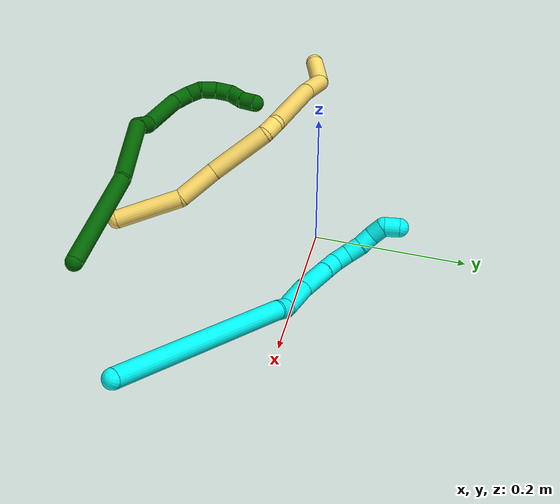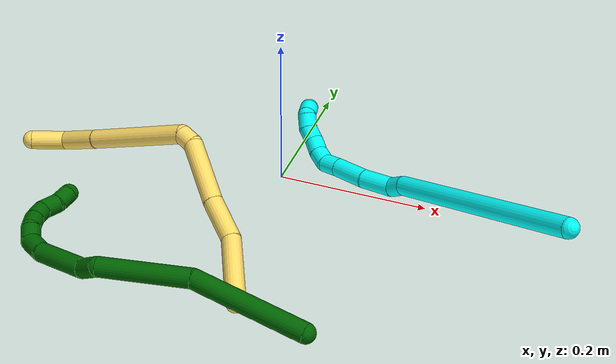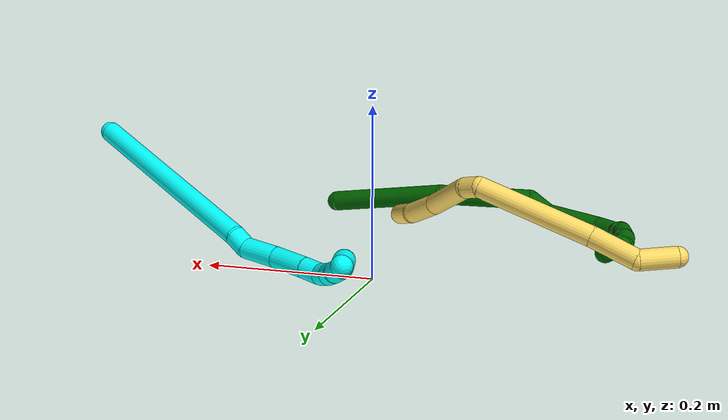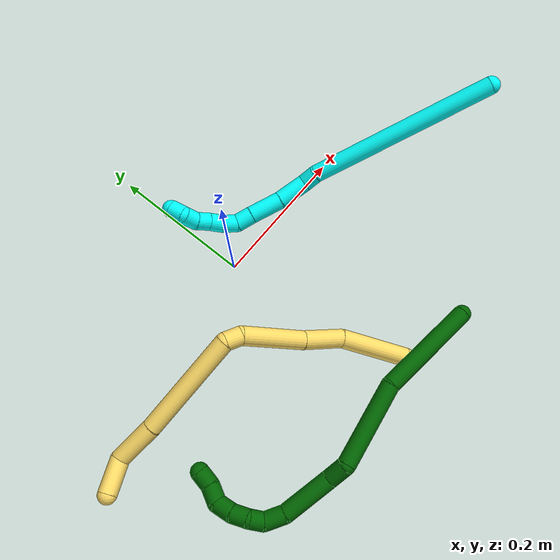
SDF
<sdf version="1.7">
 <world name="default">
  <model name="3">
   <static>0</static>
   <link name="3">
    <collision name="collision-cylinder-e_1_1_4">
     <pose>-0.052923 -0.005029 -0.121755 3.10031 -0.40972 -2.94355</pose>
     <geometry><cylinder><radius>0.0125</radius><length>0.265709</length></cylinder></geometry>
     <surface>
      <friction><ode><mu>1.16</mu><mu2>1.16</mu2><slip1>0</slip1><slip2>0</slip2></ode></friction>
      <contact><ode><kp>1e+06</kp><kd>1</kd><max_vel>0</max_vel><min_depth>0.001</min_depth></ode></contact>
     </surface>
    </collision>
    <visual name="visual-cylinder-e_1_1_4">
     <pose>-0.052923 -0.005029 -0.121755 3.10031 -0.40972 -2.94355</pose>
     <geometry><cylinder><radius>0.0125</radius><length>0.265709</length></cylinder></geometry>
     <material><ambient>0.003922 1 0.996078 1</ambient></material>
    </visual>
    <collision name="collision-cylinder-e_2_4_5">
     <pose>-0.108329 -0.012641 -0.253765 2.89482 -0.230607 -1.50244</pose>
     <geometry><cylinder><radius>0.0125</radius><length>0.021727</length></cylinder></geometry>
     <surface>
      <friction><ode><mu>1.16</mu><mu2>1.16</mu2><slip1>0</slip1><slip2>0</slip2></ode></friction>
      <contact><ode><kp>1e+06</kp><kd>1</kd><max_vel>0</max_vel><min_depth>0.001</min_depth></ode></contact>
     </surface>
    </collision>
    <visual name="visual-cylinder-e_2_4_5">
     <pose>-0.108329 -0.012641 -0.253765 2.89482 -0.230607 -1.50244</pose>
     <geometry><cylinder><radius>0.0125</radius><length>0.021727</length></cylinder></geometry>
     <material><ambient>0.003922 1 0.996078 1</ambient></material>
    </visual>
    <collision name="collision-cylinder-e_3_5_6">
     <pose>-0.124841 -0.018712 -0.280149 2.92861 -0.704593 -2.57565</pose>
     <geometry><cylinder><radius>0.0125</radius><length>0.043318</length></cylinder></geometry>
     <surface>
      <friction><ode><mu>1.16</mu><mu2>1.16</mu2><slip1>0</slip1><slip2>0</slip2></ode></friction>
      <contact><ode><kp>1e+06</kp><kd>1</kd><max_vel>0</max_vel><min_depth>0.001</min_depth></ode></contact>
     </surface>
    </collision>
    <visual name="visual-cylinder-e_3_5_6">
     <pose>-0.124841 -0.018712 -0.280149 2.92861 -0.704593 -2.57565</pose>
     <geometry><cylinder><radius>0.0125</radius><length>0.043318</length></cylinder></geometry>
     <material><ambient>0.003922 1 0.996078 1</ambient></material>
    </visual>
    <collision name="collision-cylinder-e_4_6_7">
     <pose>-0.152989 -0.022893 -0.314025 3.10257 -0.67164 -3.02991</pose>
     <geometry><cylinder><radius>0.0125</radius><length>0.045379</length></cylinder></geometry>
     <surface>
      <friction><ode><mu>1.16</mu><mu2>1.16</mu2><slip1>0</slip1><slip2>0</slip2></ode></friction>
      <contact><ode><kp>1e+06</kp><kd>1</kd><max_vel>0</max_vel><min_depth>0.001</min_depth></ode></contact>
     </surface>
    </collision>
    <visual name="visual-cylinder-e_4_6_7">
     <pose>-0.152989 -0.022893 -0.314025 3.10257 -0.67164 -3.02991</pose>
     <geometry><cylinder><radius>0.0125</radius><length>0.045379</length></cylinder></geometry>
     <material><ambient>0.003922 1 0.996078 1</ambient></material>
    </visual>
    <collision name="collision-cylinder-e_5_7_8">
     <pose>-0.174168 -0.024471 -0.34123 3.04828 -0.63921 -2.8613</pose>
     <geometry><cylinder><radius>0.0125</radius><length>0.023671</length></cylinder></geometry>
     <surface>
      <friction><ode><mu>1.16</mu><mu2>1.16</mu2><slip1>0</slip1><slip2>0</slip2></ode></friction>
      <contact><ode><kp>1e+06</kp><kd>1</kd><max_vel>0</max_vel><min_depth>0.001</min_depth></ode></contact>
     </surface>
    </collision>
    <visual name="visual-cylinder-e_5_7_8">
     <pose>-0.174168 -0.024471 -0.34123 3.04828 -0.63921 -2.8613</pose>
     <geometry><cylinder><radius>0.0125</radius><length>0.023671</length></cylinder></geometry>
     <material><ambient>0.003922 1 0.996078 1</ambient></material>
    </visual>
    <collision name="collision-cylinder-e_6_8_9">
     <pose>-0.187984 -0.021308 -0.35691 -2.56477 -0.738259 1.83314</pose>
     <geometry><cylinder><radius>0.0125</radius><length>0.020073</length></cylinder></geometry>
     <surface>
      <friction><ode><mu>1.16</mu><mu2>1.16</mu2><slip1>0</slip1><slip2>0</slip2></ode></friction>
      <contact><ode><kp>1e+06</kp><kd>1</kd><max_vel>0</max_vel><min_depth>0.001</min_depth></ode></contact>
     </surface>
    </collision>
    <visual name="visual-cylinder-e_6_8_9">
     <pose>-0.187984 -0.021308 -0.35691 -2.56477 -0.738259 1.83314</pose>
     <geometry><cylinder><radius>0.0125</radius><length>0.020073</length></cylinder></geometry>
     <material><ambient>0.003922 1 0.996078 1</ambient></material>
    </visual>
    <collision name="collision-cylinder-e_7_9_10">
     <pose>-0.201326 -0.011598 -0.368152 -2.29618 -0.716425 1.38819</pose>
     <geometry><cylinder><radius>0.0125</radius><length>0.020064</length></cylinder></geometry>
     <surface>
      <friction><ode><mu>1.16</mu><mu2>1.16</mu2><slip1>0</slip1><slip2>0</slip2></ode></friction>
      <contact><ode><kp>1e+06</kp><kd>1</kd><max_vel>0</max_vel><min_depth>0.001</min_depth></ode></contact>
     </surface>
    </collision>
    <visual name="visual-cylinder-e_7_9_10">
     <pose>-0.201326 -0.011598 -0.368152 -2.29618 -0.716425 1.38819</pose>
     <geometry><cylinder><radius>0.0125</radius><length>0.020064</length></cylinder></geometry>
     <material><ambient>0.003922 1 0.996078 1</ambient></material>
    </visual>
    <collision name="collision-cylinder-e_8_10_11">
     <pose>-0.215701 -0.001235 -0.377337 -2.29584 -0.891944 1.63126</pose>
     <geometry><cylinder><radius>0.0125</radius><length>0.020011</length></cylinder></geometry>
     <surface>
      <friction><ode><mu>1.16</mu><mu2>1.16</mu2><slip1>0</slip1><slip2>0</slip2></ode></friction>
      <contact><ode><kp>1e+06</kp><kd>1</kd><max_vel>0</max_vel><min_depth>0.001</min_depth></ode></contact>
     </surface>
    </collision>
    <visual name="visual-cylinder-e_8_10_11">
     <pose>-0.215701 -0.001235 -0.377337 -2.29584 -0.891944 1.63126</pose>
     <geometry><cylinder><radius>0.0125</radius><length>0.020011</length></cylinder></geometry>
     <material><ambient>0.003922 1 0.996078 1</ambient></material>
    </visual>
    <collision name="collision-cylinder-e_9_11_12">
     <pose>-0.230087 0.010786 -0.383252 -1.80536 -0.71989 0.889943</pose>
     <geometry><cylinder><radius>0.0125</radius><length>0.020016</length></cylinder></geometry>
     <surface>
      <friction><ode><mu>1.16</mu><mu2>1.16</mu2><slip1>0</slip1><slip2>0</slip2></ode></friction>
      <contact><ode><kp>1e+06</kp><kd>1</kd><max_vel>0</max_vel><min_depth>0.001</min_depth></ode></contact>
     </surface>
    </collision>
    <visual name="visual-cylinder-e_9_11_12">
     <pose>-0.230087 0.010786 -0.383252 -1.80536 -0.71989 0.889943</pose>
     <geometry><cylinder><radius>0.0125</radius><length>0.020016</length></cylinder></geometry>
     <material><ambient>0.003922 1 0.996078 1</ambient></material>
    </visual>
    <collision name="collision-cylinder-e_10_12_2">
     <pose>-0.237624 0.025431 -0.391767 -2.3165 -0.093848 0.213768</pose>
     <geometry><cylinder><radius>0.0125</radius><length>0.020033</length></cylinder></geometry>
     <surface>
      <friction><ode><mu>1.16</mu><mu2>1.16</mu2><slip1>0</slip1><slip2>0</slip2></ode></friction>
      <contact><ode><kp>1e+06</kp><kd>1</kd><max_vel>0</max_vel><min_depth>0.001</min_depth></ode></contact>
     </surface>
    </collision>
    <visual name="visual-cylinder-e_10_12_2">
     <pose>-0.237624 0.025431 -0.391767 -2.3165 -0.093848 0.213768</pose>
     <geometry><cylinder><radius>0.0125</radius><length>0.020033</length></cylinder></geometry>
     <material><ambient>0.003922 1 0.996078 1</ambient></material>
    </visual>
    <collision name="collision-sphere-2">
     <pose>-0.238562 0.032756 -0.398533 0 -0 0</pose>
     <geometry><sphere><radius>0.0125</radius></sphere></geometry>
     <surface>
      <friction><ode><mu>1.16</mu><mu2>1.16</mu2><slip1>0</slip1><slip2>0</slip2></ode></friction>
      <contact><ode><kp>1e+06</kp><kd>1</kd><max_vel>0</max_vel><min_depth>0.001</min_depth></ode></contact>
     </surface>
    </collision>
    <visual name="visual-sphere-2">
     <pose>-0.238562 0.032756 -0.398533 0 -0 0</pose>
     <geometry><sphere><radius>0.0125</radius></sphere></geometry>
     <material><ambient>0.003922 1 0.996078 1</ambient></material>
    </visual>
    <collision name="collision-sphere-12">
     <pose>-0.236685 0.018105 -0.385001 0 -0 0</pose>
     <geometry><sphere><radius>0.0125</radius></sphere></geometry>
     <surface>
      <friction><ode><mu>1.16</mu><mu2>1.16</mu2><slip1>0</slip1><slip2>0</slip2></ode></friction>
      <contact><ode><kp>1e+06</kp><kd>1</kd><max_vel>0</max_vel><min_depth>0.001</min_depth></ode></contact>
     </surface>
    </collision>
    <visual name="visual-sphere-12">
     <pose>-0.236685 0.018105 -0.385001 0 -0 0</pose>
     <geometry><sphere><radius>0.0125</radius></sphere></geometry>
     <material><ambient>0.003922 1 0.996078 1</ambient></material>
    </visual>
    <collision name="collision-sphere-11">
     <pose>-0.223488 0.003467 -0.381503 0 -0 0</pose>
     <geometry><sphere><radius>0.0125</radius></sphere></geometry>
     <surface>
      <friction><ode><mu>1.16</mu><mu2>1.16</mu2><slip1>0</slip1><slip2>0</slip2></ode></friction>
      <contact><ode><kp>1e+06</kp><kd>1</kd><max_vel>0</max_vel><min_depth>0.001</min_depth></ode></contact>
     </surface>
    </collision>
    <visual name="visual-sphere-11">
     <pose>-0.223488 0.003467 -0.381503 0 -0 0</pose>
     <geometry><sphere><radius>0.0125</radius></sphere></geometry>
     <material><ambient>0.003922 1 0.996078 1</ambient></material>
    </visual>
    <collision name="collision-sphere-10">
     <pose>-0.207914 -0.005937 -0.373171 0 -0 0</pose>
     <geometry><sphere><radius>0.0125</radius></sphere></geometry>
     <surface>
      <friction><ode><mu>1.16</mu><mu2>1.16</mu2><slip1>0</slip1><slip2>0</slip2></ode></friction>
      <contact><ode><kp>1e+06</kp><kd>1</kd><max_vel>0</max_vel><min_depth>0.001</min_depth></ode></contact>
     </surface>
    </collision>
    <visual name="visual-sphere-10">
     <pose>-0.207914 -0.005937 -0.373171 0 -0 0</pose>
     <geometry><sphere><radius>0.0125</radius></sphere></geometry>
     <material><ambient>0.003922 1 0.996078 1</ambient></material>
    </visual>
    <collision name="collision-sphere-9">
     <pose>-0.194738 -0.017259 -0.363132 0 -0 0</pose>
     <geometry><sphere><radius>0.0125</radius></sphere></geometry>
     <surface>
      <friction><ode><mu>1.16</mu><mu2>1.16</mu2><slip1>0</slip1><slip2>0</slip2></ode></friction>
      <contact><ode><kp>1e+06</kp><kd>1</kd><max_vel>0</max_vel><min_depth>0.001</min_depth></ode></contact>
     </surface>
    </collision>
    <visual name="visual-sphere-9">
     <pose>-0.194738 -0.017259 -0.363132 0 -0 0</pose>
     <geometry><sphere><radius>0.0125</radius></sphere></geometry>
     <material><ambient>0.003922 1 0.996078 1</ambient></material>
    </visual>
    <collision name="collision-sphere-4">
     <pose>-0.105846 -0.010057 -0.243509 0 -0 0</pose>
     <geometry><sphere><radius>0.0125</radius></sphere></geometry>
     <surface>
      <friction><ode><mu>1.16</mu><mu2>1.16</mu2><slip1>0</slip1><slip2>0</slip2></ode></friction>
      <contact><ode><kp>1e+06</kp><kd>1</kd><max_vel>0</max_vel><min_depth>0.001</min_depth></ode></contact>
     </surface>
    </collision>
    <visual name="visual-sphere-4">
     <pose>-0.105846 -0.010057 -0.243509 0 -0 0</pose>
     <geometry><sphere><radius>0.0125</radius></sphere></geometry>
     <material><ambient>0.003922 1 0.996078 1</ambient></material>
    </visual>
    <collision name="collision-sphere-1">
     <geometry><sphere><radius>0.0125</radius></sphere></geometry>
     <surface>
      <friction><ode><mu>1.16</mu><mu2>1.16</mu2><slip1>0</slip1><slip2>0</slip2></ode></friction>
      <contact><ode><kp>1e+06</kp><kd>1</kd><max_vel>0</max_vel><min_depth>0.001</min_depth></ode></contact>
     </surface>
    </collision>
    <visual name="visual-sphere-1">
     <geometry><sphere><radius>0.0125</radius></sphere></geometry>
     <material><ambient>0.003922 1 0.996078 1</ambient></material>
    </visual>
    <collision name="collision-sphere-8">
     <pose>-0.181229 -0.025356 -0.350688 0 -0 0</pose>
     <geometry><sphere><radius>0.0125</radius></sphere></geometry>
     <surface>
      <friction><ode><mu>1.16</mu><mu2>1.16</mu2><slip1>0</slip1><slip2>0</slip2></ode></friction>
      <contact><ode><kp>1e+06</kp><kd>1</kd><max_vel>0</max_vel><min_depth>0.001</min_depth></ode></contact>
     </surface>
    </collision>
    <visual name="visual-sphere-8">
     <pose>-0.181229 -0.025356 -0.350688 0 -0 0</pose>
     <geometry><sphere><radius>0.0125</radius></sphere></geometry>
     <material><ambient>0.003922 1 0.996078 1</ambient></material>
    </visual>
    <collision name="collision-sphere-5">
     <pose>-0.110812 -0.015224 -0.26402 0 -0 0</pose>
     <geometry><sphere><radius>0.0125</radius></sphere></geometry>
     <surface>
      <friction><ode><mu>1.16</mu><mu2>1.16</mu2><slip1>0</slip1><slip2>0</slip2></ode></friction>
      <contact><ode><kp>1e+06</kp><kd>1</kd><max_vel>0</max_vel><min_depth>0.001</min_depth></ode></contact>
     </surface>
    </collision>
    <visual name="visual-sphere-5">
     <pose>-0.110812 -0.015224 -0.26402 0 -0 0</pose>
     <geometry><sphere><radius>0.0125</radius></sphere></geometry>
     <material><ambient>0.003922 1 0.996078 1</ambient></material>
    </visual>
    <collision name="collision-sphere-6">
     <pose>-0.13887 -0.0222 -0.296277 0 -0 0</pose>
     <geometry><sphere><radius>0.0125</radius></sphere></geometry>
     <surface>
      <friction><ode><mu>1.16</mu><mu2>1.16</mu2><slip1>0</slip1><slip2>0</slip2></ode></friction>
      <contact><ode><kp>1e+06</kp><kd>1</kd><max_vel>0</max_vel><min_depth>0.001</min_depth></ode></contact>
     </surface>
    </collision>
    <visual name="visual-sphere-6">
     <pose>-0.13887 -0.0222 -0.296277 0 -0 0</pose>
     <geometry><sphere><radius>0.0125</radius></sphere></geometry>
     <material><ambient>0.003922 1 0.996078 1</ambient></material>
    </visual>
    <collision name="collision-sphere-7">
     <pose>-0.167108 -0.023586 -0.331773 0 -0 0</pose>
     <geometry><sphere><radius>0.0125</radius></sphere></geometry>
     <surface>
      <friction><ode><mu>1.16</mu><mu2>1.16</mu2><slip1>0</slip1><slip2>0</slip2></ode></friction>
      <contact><ode><kp>1e+06</kp><kd>1</kd><max_vel>0</max_vel><min_depth>0.001</min_depth></ode></contact>
     </surface>
    </collision>
    <visual name="visual-sphere-7">
     <pose>-0.167108 -0.023586 -0.331773 0 -0 0</pose>
     <geometry><sphere><radius>0.0125</radius></sphere></geometry>
     <material><ambient>0.003922 1 0.996078 1</ambient></material>
    </visual>
    <inertial>
     <pose>-0.108767 -0.007999 -0.219897 0 -0 0</pose>
     <mass>0.5</mass>
     <inertia>
      <ixx>-0.001732</ixx>
      <ixy>0</ixy>
      <ixz>0</ixz>
      <iyy>0.001284</iyy>
      <iyz>0</iyz>
      <izz>0.00067</izz>
     </inertia>
    </inertial>
   </link>
   <pose>0.387923 -0.135842 0.123117 0.62655 0.700864 0.037633</pose>
  </model>
  <model name="5">
   <static>0</static>
   <link name="5">
    <collision name="collision-cylinder-e_1_1_4">
     <pose>0.000618 0.041642 -0.018248 -1.98379 0.013602 -0.02081</pose>
     <geometry><cylinder><radius>0.0125</radius><length>0.090938</length></cylinder></geometry>
     <surface>
      <friction><ode><mu>1.16</mu><mu2>1.16</mu2><slip1>0</slip1><slip2>0</slip2></ode></friction>
      <contact><ode><kp>1e+06</kp><kd>1</kd><max_vel>0</max_vel><min_depth>0.001</min_depth></ode></contact>
     </surface>
    </collision>
    <visual name="visual-cylinder-e_1_1_4">
     <pose>0.000618 0.041642 -0.018248 -1.98379 0.013602 -0.02081</pose>
     <geometry><cylinder><radius>0.0125</radius><length>0.090938</length></cylinder></geometry>
     <material><ambient>1 0.858824 0.4 1</ambient></material>
    </visual>
    <collision name="collision-cylinder-e_2_4_5">
     <pose>0.004306 0.111072 -0.037318 -1.6004 0.109973 -0.11327</pose>
     <geometry><cylinder><radius>0.0125</radius><length>0.055937</length></cylinder></geometry>
     <surface>
      <friction><ode><mu>1.16</mu><mu2>1.16</mu2><slip1>0</slip1><slip2>0</slip2></ode></friction>
      <contact><ode><kp>1e+06</kp><kd>1</kd><max_vel>0</max_vel><min_depth>0.001</min_depth></ode></contact>
     </surface>
    </collision>
    <visual name="visual-cylinder-e_2_4_5">
     <pose>0.004306 0.111072 -0.037318 -1.6004 0.109973 -0.11327</pose>
     <geometry><cylinder><radius>0.0125</radius><length>0.055937</length></cylinder></geometry>
     <material><ambient>1 0.858824 0.4 1</ambient></material>
    </visual>
    <collision name="collision-cylinder-e_3_5_6">
     <pose>0.014172 0.180579 -0.043618 -1.70134 0.160124 -0.182404</pose>
     <geometry><cylinder><radius>0.0125</radius><length>0.085246</length></cylinder></geometry>
     <surface>
      <friction><ode><mu>1.16</mu><mu2>1.16</mu2><slip1>0</slip1><slip2>0</slip2></ode></friction>
      <contact><ode><kp>1e+06</kp><kd>1</kd><max_vel>0</max_vel><min_depth>0.001</min_depth></ode></contact>
     </surface>
    </collision>
    <visual name="visual-cylinder-e_3_5_6">
     <pose>0.014172 0.180579 -0.043618 -1.70134 0.160124 -0.182404</pose>
     <geometry><cylinder><radius>0.0125</radius><length>0.085246</length></cylinder></geometry>
     <material><ambient>1 0.858824 0.4 1</ambient></material>
    </visual>
    <collision name="collision-cylinder-e_4_6_7">
     <pose>0.019865 0.233006 -0.046645 -1.34585 -0.100076 0.079788</pose>
     <geometry><cylinder><radius>0.0125</radius><length>0.022078</length></cylinder></geometry>
     <surface>
      <friction><ode><mu>1.16</mu><mu2>1.16</mu2><slip1>0</slip1><slip2>0</slip2></ode></friction>
      <contact><ode><kp>1e+06</kp><kd>1</kd><max_vel>0</max_vel><min_depth>0.001</min_depth></ode></contact>
     </surface>
    </collision>
    <visual name="visual-cylinder-e_4_6_7">
     <pose>0.019865 0.233006 -0.046645 -1.34585 -0.100076 0.079788</pose>
     <geometry><cylinder><radius>0.0125</radius><length>0.022078</length></cylinder></geometry>
     <material><ambient>1 0.858824 0.4 1</ambient></material>
    </visual>
    <collision name="collision-cylinder-e_5_7_8">
     <pose>-0.02191 0.289451 -0.008222 -0.904331 -0.61003 0.303502</pose>
     <geometry><cylinder><radius>0.0125</radius><length>0.141989</length></cylinder></geometry>
     <surface>
      <friction><ode><mu>1.16</mu><mu2>1.16</mu2><slip1>0</slip1><slip2>0</slip2></ode></friction>
      <contact><ode><kp>1e+06</kp><kd>1</kd><max_vel>0</max_vel><min_depth>0.001</min_depth></ode></contact>
     </surface>
    </collision>
    <visual name="visual-cylinder-e_5_7_8">
     <pose>-0.02191 0.289451 -0.008222 -0.904331 -0.61003 0.303502</pose>
     <geometry><cylinder><radius>0.0125</radius><length>0.141989</length></cylinder></geometry>
     <material><ambient>1 0.858824 0.4 1</ambient></material>
    </visual>
    <collision name="collision-cylinder-e_6_8_9">
     <pose>-0.080221 0.354805 0.040001 -1.01261 -0.651543 0.370347</pose>
     <geometry><cylinder><radius>0.0125</radius><length>0.058172</length></cylinder></geometry>
     <surface>
      <friction><ode><mu>1.16</mu><mu2>1.16</mu2><slip1>0</slip1><slip2>0</slip2></ode></friction>
      <contact><ode><kp>1e+06</kp><kd>1</kd><max_vel>0</max_vel><min_depth>0.001</min_depth></ode></contact>
     </surface>
    </collision>
    <visual name="visual-cylinder-e_6_8_9">
     <pose>-0.080221 0.354805 0.040001 -1.01261 -0.651543 0.370347</pose>
     <geometry><cylinder><radius>0.0125</radius><length>0.058172</length></cylinder></geometry>
     <material><ambient>1 0.858824 0.4 1</ambient></material>
    </visual>
    <collision name="collision-cylinder-e_7_9_2">
     <pose>-0.101214 0.384692 0.072351 -0.472317 -0.147558 0.03557</pose>
     <geometry><cylinder><radius>0.0125</radius><length>0.04564</length></cylinder></geometry>
     <surface>
      <friction><ode><mu>1.16</mu><mu2>1.16</mu2><slip1>0</slip1><slip2>0</slip2></ode></friction>
      <contact><ode><kp>1e+06</kp><kd>1</kd><max_vel>0</max_vel><min_depth>0.001</min_depth></ode></contact>
     </surface>
    </collision>
    <visual name="visual-cylinder-e_7_9_2">
     <pose>-0.101214 0.384692 0.072351 -0.472317 -0.147558 0.03557</pose>
     <geometry><cylinder><radius>0.0125</radius><length>0.04564</length></cylinder></geometry>
     <material><ambient>1 0.858824 0.4 1</ambient></material>
    </visual>
    <collision name="collision-sphere-2">
     <pose>-0.104569 0.394961 0.092452 0 -0 0</pose>
     <geometry><sphere><radius>0.0125</radius></sphere></geometry>
     <surface>
      <friction><ode><mu>1.16</mu><mu2>1.16</mu2><slip1>0</slip1><slip2>0</slip2></ode></friction>
      <contact><ode><kp>1e+06</kp><kd>1</kd><max_vel>0</max_vel><min_depth>0.001</min_depth></ode></contact>
     </surface>
    </collision>
    <visual name="visual-sphere-2">
     <pose>-0.104569 0.394961 0.092452 0 -0 0</pose>
     <geometry><sphere><radius>0.0125</radius></sphere></geometry>
     <material><ambient>1 0.858824 0.4 1</ambient></material>
    </visual>
    <collision name="collision-sphere-9">
     <pose>-0.097859 0.374422 0.05225 0 -0 0</pose>
     <geometry><sphere><radius>0.0125</radius></sphere></geometry>
     <surface>
      <friction><ode><mu>1.16</mu><mu2>1.16</mu2><slip1>0</slip1><slip2>0</slip2></ode></friction>
      <contact><ode><kp>1e+06</kp><kd>1</kd><max_vel>0</max_vel><min_depth>0.001</min_depth></ode></contact>
     </surface>
    </collision>
    <visual name="visual-sphere-9">
     <pose>-0.097859 0.374422 0.05225 0 -0 0</pose>
     <geometry><sphere><radius>0.0125</radius></sphere></geometry>
     <material><ambient>1 0.858824 0.4 1</ambient></material>
    </visual>
    <collision name="collision-sphere-4">
     <pose>0.001237 0.083284 -0.036495 0 -0 0</pose>
     <geometry><sphere><radius>0.0125</radius></sphere></geometry>
     <surface>
      <friction><ode><mu>1.16</mu><mu2>1.16</mu2><slip1>0</slip1><slip2>0</slip2></ode></friction>
      <contact><ode><kp>1e+06</kp><kd>1</kd><max_vel>0</max_vel><min_depth>0.001</min_depth></ode></contact>
     </surface>
    </collision>
    <visual name="visual-sphere-4">
     <pose>0.001237 0.083284 -0.036495 0 -0 0</pose>
     <geometry><sphere><radius>0.0125</radius></sphere></geometry>
     <material><ambient>1 0.858824 0.4 1</ambient></material>
    </visual>
    <collision name="collision-sphere-1">
     <geometry><sphere><radius>0.0125</radius></sphere></geometry>
     <surface>
      <friction><ode><mu>1.16</mu><mu2>1.16</mu2><slip1>0</slip1><slip2>0</slip2></ode></friction>
      <contact><ode><kp>1e+06</kp><kd>1</kd><max_vel>0</max_vel><min_depth>0.001</min_depth></ode></contact>
     </surface>
    </collision>
    <visual name="visual-sphere-1">
     <geometry><sphere><radius>0.0125</radius></sphere></geometry>
     <material><ambient>1 0.858824 0.4 1</ambient></material>
    </visual>
    <collision name="collision-sphere-8">
     <pose>-0.062583 0.335188 0.027751 0 -0 0</pose>
     <geometry><sphere><radius>0.0125</radius></sphere></geometry>
     <surface>
      <friction><ode><mu>1.16</mu><mu2>1.16</mu2><slip1>0</slip1><slip2>0</slip2></ode></friction>
      <contact><ode><kp>1e+06</kp><kd>1</kd><max_vel>0</max_vel><min_depth>0.001</min_depth></ode></contact>
     </surface>
    </collision>
    <visual name="visual-sphere-8">
     <pose>-0.062583 0.335188 0.027751 0 -0 0</pose>
     <geometry><sphere><radius>0.0125</radius></sphere></geometry>
     <material><ambient>1 0.858824 0.4 1</ambient></material>
    </visual>
    <collision name="collision-sphere-5">
     <pose>0.007376 0.138859 -0.038141 0 -0 0</pose>
     <geometry><sphere><radius>0.0125</radius></sphere></geometry>
     <surface>
      <friction><ode><mu>1.16</mu><mu2>1.16</mu2><slip1>0</slip1><slip2>0</slip2></ode></friction>
      <contact><ode><kp>1e+06</kp><kd>1</kd><max_vel>0</max_vel><min_depth>0.001</min_depth></ode></contact>
     </surface>
    </collision>
    <visual name="visual-sphere-5">
     <pose>0.007376 0.138859 -0.038141 0 -0 0</pose>
     <geometry><sphere><radius>0.0125</radius></sphere></geometry>
     <material><ambient>1 0.858824 0.4 1</ambient></material>
    </visual>
    <collision name="collision-sphere-6">
     <pose>0.020968 0.222299 -0.049095 0 -0 0</pose>
     <geometry><sphere><radius>0.0125</radius></sphere></geometry>
     <surface>
      <friction><ode><mu>1.16</mu><mu2>1.16</mu2><slip1>0</slip1><slip2>0</slip2></ode></friction>
      <contact><ode><kp>1e+06</kp><kd>1</kd><max_vel>0</max_vel><min_depth>0.001</min_depth></ode></contact>
     </surface>
    </collision>
    <visual name="visual-sphere-6">
     <pose>0.020968 0.222299 -0.049095 0 -0 0</pose>
     <geometry><sphere><radius>0.0125</radius></sphere></geometry>
     <material><ambient>1 0.858824 0.4 1</ambient></material>
    </visual>
    <collision name="collision-sphere-7">
     <pose>0.018762 0.243713 -0.044195 0 -0 0</pose>
     <geometry><sphere><radius>0.0125</radius></sphere></geometry>
     <surface>
      <friction><ode><mu>1.16</mu><mu2>1.16</mu2><slip1>0</slip1><slip2>0</slip2></ode></friction>
      <contact><ode><kp>1e+06</kp><kd>1</kd><max_vel>0</max_vel><min_depth>0.001</min_depth></ode></contact>
     </surface>
    </collision>
    <visual name="visual-sphere-7">
     <pose>0.018762 0.243713 -0.044195 0 -0 0</pose>
     <geometry><sphere><radius>0.0125</radius></sphere></geometry>
     <material><ambient>1 0.858824 0.4 1</ambient></material>
    </visual>
    <inertial>
     <pose>-0.020906 0.219667 -0.008067 0 -0 0</pose>
     <mass>0.5</mass>
     <inertia>
      <ixx>0.000397</ixx>
      <ixy>0</ixy>
      <ixz>0</ixz>
      <iyy>0.00025</iyy>
      <iyz>0</iyz>
      <izz>-0.000159</izz>
     </inertia>
    </inertial>
   </link>
   <pose>0.043733 -0.26341 0.011888 1.32763 -1.26906 -0.439294</pose>
  </model>
  <model name="6">
   <static>0</static>
   <link name="6">
    <collision name="collision-cylinder-e_1_1_4">
     <pose>-0.043822 0.03318 -0.048307 -2.53973 -0.64206 1.63976</pose>
     <geometry><cylinder><radius>0.0125</radius><length>0.146353</length></cylinder></geometry>
     <surface>
      <friction><ode><mu>1.16</mu><mu2>1.16</mu2><slip1>0</slip1><slip2>0</slip2></ode></friction>
      <contact><ode><kp>1e+06</kp><kd>1</kd><max_vel>0</max_vel><min_depth>0.001</min_depth></ode></contact>
     </surface>
    </collision>
    <visual name="visual-cylinder-e_1_1_4">
     <pose>-0.043822 0.03318 -0.048307 -2.53973 -0.64206 1.63976</pose>
     <geometry><cylinder><radius>0.0125</radius><length>0.146353</length></cylinder></geometry>
     <material><ambient>0 0.392157 0.003922 1</ambient></material>
    </visual>
    <collision name="collision-cylinder-e_2_4_5">
     <pose>-0.111549 0.106804 -0.130347 -2.26598 -0.426117 0.865853</pose>
     <geometry><cylinder><radius>0.0125</radius><length>0.115674</length></cylinder></geometry>
     <surface>
      <friction><ode><mu>1.16</mu><mu2>1.16</mu2><slip1>0</slip1><slip2>0</slip2></ode></friction>
      <contact><ode><kp>1e+06</kp><kd>1</kd><max_vel>0</max_vel><min_depth>0.001</min_depth></ode></contact>
     </surface>
    </collision>
    <visual name="visual-cylinder-e_2_4_5">
     <pose>-0.111549 0.106804 -0.130347 -2.26598 -0.426117 0.865853</pose>
     <geometry><cylinder><radius>0.0125</radius><length>0.115674</length></cylinder></geometry>
     <material><ambient>0 0.392157 0.003922 1</ambient></material>
    </visual>
    <collision name="collision-cylinder-e_3_5_6">
     <pose>-0.145968 0.157606 -0.164381 -1.59981 -0.792572 0.813446</pose>
     <geometry><cylinder><radius>0.0125</radius><length>0.029522</length></cylinder></geometry>
     <surface>
      <friction><ode><mu>1.16</mu><mu2>1.16</mu2><slip1>0</slip1><slip2>0</slip2></ode></friction>
      <contact><ode><kp>1e+06</kp><kd>1</kd><max_vel>0</max_vel><min_depth>0.001</min_depth></ode></contact>
     </surface>
    </collision>
    <visual name="visual-cylinder-e_3_5_6">
     <pose>-0.145968 0.157606 -0.164381 -1.59981 -0.792572 0.813446</pose>
     <geometry><cylinder><radius>0.0125</radius><length>0.029522</length></cylinder></geometry>
     <material><ambient>0 0.392157 0.003922 1</ambient></material>
    </visual>
    <collision name="collision-cylinder-e_4_6_7">
     <pose>-0.182329 0.186565 -0.179129 -2.23118 -0.831867 1.46824</pose>
     <geometry><cylinder><radius>0.0125</radius><length>0.069938</length></cylinder></geometry>
     <surface>
      <friction><ode><mu>1.16</mu><mu2>1.16</mu2><slip1>0</slip1><slip2>0</slip2></ode></friction>
      <contact><ode><kp>1e+06</kp><kd>1</kd><max_vel>0</max_vel><min_depth>0.001</min_depth></ode></contact>
     </surface>
    </collision>
    <visual name="visual-cylinder-e_4_6_7">
     <pose>-0.182329 0.186565 -0.179129 -2.23118 -0.831867 1.46824</pose>
     <geometry><cylinder><radius>0.0125</radius><length>0.069938</length></cylinder></geometry>
     <material><ambient>0 0.392157 0.003922 1</ambient></material>
    </visual>
    <collision name="collision-cylinder-e_5_7_8">
     <pose>-0.220872 0.209006 -0.198335 -2.46255 -1.12182 2.11723</pose>
     <geometry><cylinder><radius>0.0125</radius><length>0.028182</length></cylinder></geometry>
     <surface>
      <friction><ode><mu>1.16</mu><mu2>1.16</mu2><slip1>0</slip1><slip2>0</slip2></ode></friction>
      <contact><ode><kp>1e+06</kp><kd>1</kd><max_vel>0</max_vel><min_depth>0.001</min_depth></ode></contact>
     </surface>
    </collision>
    <visual name="visual-cylinder-e_5_7_8">
     <pose>-0.220872 0.209006 -0.198335 -2.46255 -1.12182 2.11723</pose>
     <geometry><cylinder><radius>0.0125</radius><length>0.028182</length></cylinder></geometry>
     <material><ambient>0 0.392157 0.003922 1</ambient></material>
    </visual>
    <collision name="collision-cylinder-e_6_8_9">
     <pose>-0.242602 0.209631 -0.206136 2.32832 -1.11524 -1.93292</pose>
     <geometry><cylinder><radius>0.0125</radius><length>0.020122</length></cylinder></geometry>
     <surface>
      <friction><ode><mu>1.16</mu><mu2>1.16</mu2><slip1>0</slip1><slip2>0</slip2></ode></friction>
      <contact><ode><kp>1e+06</kp><kd>1</kd><max_vel>0</max_vel><min_depth>0.001</min_depth></ode></contact>
     </surface>
    </collision>
    <visual name="visual-cylinder-e_6_8_9">
     <pose>-0.242602 0.209631 -0.206136 2.32832 -1.11524 -1.93292</pose>
     <geometry><cylinder><radius>0.0125</radius><length>0.020122</length></cylinder></geometry>
     <material><ambient>0 0.392157 0.003922 1</ambient></material>
    </visual>
    <collision name="collision-cylinder-e_7_9_10">
     <pose>-0.262349 0.2043 -0.208129 1.11045 -1.35393 -0.924927</pose>
     <geometry><cylinder><radius>0.0125</radius><length>0.021937</length></cylinder></geometry>
     <surface>
      <friction><ode><mu>1.16</mu><mu2>1.16</mu2><slip1>0</slip1><slip2>0</slip2></ode></friction>
      <contact><ode><kp>1e+06</kp><kd>1</kd><max_vel>0</max_vel><min_depth>0.001</min_depth></ode></contact>
     </surface>
    </collision>
    <visual name="visual-cylinder-e_7_9_10">
     <pose>-0.262349 0.2043 -0.208129 1.11045 -1.35393 -0.924927</pose>
     <geometry><cylinder><radius>0.0125</radius><length>0.021937</length></cylinder></geometry>
     <material><ambient>0 0.392157 0.003922 1</ambient></material>
    </visual>
    <collision name="collision-cylinder-e_8_10_11">
     <pose>-0.283505 0.19798 -0.203928 0.9276 -1.10459 -0.598016</pose>
     <geometry><cylinder><radius>0.0125</radius><length>0.023387</length></cylinder></geometry>
     <surface>
      <friction><ode><mu>1.16</mu><mu2>1.16</mu2><slip1>0</slip1><slip2>0</slip2></ode></friction>
      <contact><ode><kp>1e+06</kp><kd>1</kd><max_vel>0</max_vel><min_depth>0.001</min_depth></ode></contact>
     </surface>
    </collision>
    <visual name="visual-cylinder-e_8_10_11">
     <pose>-0.283505 0.19798 -0.203928 0.9276 -1.10459 -0.598016</pose>
     <geometry><cylinder><radius>0.0125</radius><length>0.023387</length></cylinder></geometry>
     <material><ambient>0 0.392157 0.003922 1</ambient></material>
    </visual>
    <collision name="collision-cylinder-e_9_11_12">
     <pose>-0.299573 0.185169 -0.195284 1.00274 -0.503448 -0.280066</pose>
     <geometry><cylinder><radius>0.0125</radius><length>0.023308</length></cylinder></geometry>
     <surface>
      <friction><ode><mu>1.16</mu><mu2>1.16</mu2><slip1>0</slip1><slip2>0</slip2></ode></friction>
      <contact><ode><kp>1e+06</kp><kd>1</kd><max_vel>0</max_vel><min_depth>0.001</min_depth></ode></contact>
     </surface>
    </collision>
    <visual name="visual-cylinder-e_9_11_12">
     <pose>-0.299573 0.185169 -0.195284 1.00274 -0.503448 -0.280066</pose>
     <geometry><cylinder><radius>0.0125</radius><length>0.023308</length></cylinder></geometry>
     <material><ambient>0 0.392157 0.003922 1</ambient></material>
    </visual>
    <collision name="collision-cylinder-e_10_12_2">
     <pose>-0.312638 0.16929 -0.18695 1.1984 -0.761326 -0.533587</pose>
     <geometry><cylinder><radius>0.0125</radius><length>0.021576</length></cylinder></geometry>
     <surface>
      <friction><ode><mu>1.16</mu><mu2>1.16</mu2><slip1>0</slip1><slip2>0</slip2></ode></friction>
      <contact><ode><kp>1e+06</kp><kd>1</kd><max_vel>0</max_vel><min_depth>0.001</min_depth></ode></contact>
     </surface>
    </collision>
    <visual name="visual-cylinder-e_10_12_2">
     <pose>-0.312638 0.16929 -0.18695 1.1984 -0.761326 -0.533587</pose>
     <geometry><cylinder><radius>0.0125</radius><length>0.021576</length></cylinder></geometry>
     <material><ambient>0 0.392157 0.003922 1</ambient></material>
    </visual>
    <collision name="collision-sphere-2">
     <pose>-0.320081 0.162016 -0.184109 0 -0 0</pose>
     <geometry><sphere><radius>0.0125</radius></sphere></geometry>
     <surface>
      <friction><ode><mu>1.16</mu><mu2>1.16</mu2><slip1>0</slip1><slip2>0</slip2></ode></friction>
      <contact><ode><kp>1e+06</kp><kd>1</kd><max_vel>0</max_vel><min_depth>0.001</min_depth></ode></contact>
     </surface>
    </collision>
    <visual name="visual-sphere-2">
     <pose>-0.320081 0.162016 -0.184109 0 -0 0</pose>
     <geometry><sphere><radius>0.0125</radius></sphere></geometry>
     <material><ambient>0 0.392157 0.003922 1</ambient></material>
    </visual>
    <collision name="collision-sphere-12">
     <pose>-0.305196 0.176565 -0.189792 0 -0 0</pose>
     <geometry><sphere><radius>0.0125</radius></sphere></geometry>
     <surface>
      <friction><ode><mu>1.16</mu><mu2>1.16</mu2><slip1>0</slip1><slip2>0</slip2></ode></friction>
      <contact><ode><kp>1e+06</kp><kd>1</kd><max_vel>0</max_vel><min_depth>0.001</min_depth></ode></contact>
     </surface>
    </collision>
    <visual name="visual-sphere-12">
     <pose>-0.305196 0.176565 -0.189792 0 -0 0</pose>
     <geometry><sphere><radius>0.0125</radius></sphere></geometry>
     <material><ambient>0 0.392157 0.003922 1</ambient></material>
    </visual>
    <collision name="collision-sphere-11">
     <pose>-0.293951 0.193774 -0.200776 0 -0 0</pose>
     <geometry><sphere><radius>0.0125</radius></sphere></geometry>
     <surface>
      <friction><ode><mu>1.16</mu><mu2>1.16</mu2><slip1>0</slip1><slip2>0</slip2></ode></friction>
      <contact><ode><kp>1e+06</kp><kd>1</kd><max_vel>0</max_vel><min_depth>0.001</min_depth></ode></contact>
     </surface>
    </collision>
    <visual name="visual-sphere-11">
     <pose>-0.293951 0.193774 -0.200776 0 -0 0</pose>
     <geometry><sphere><radius>0.0125</radius></sphere></geometry>
     <material><ambient>0 0.392157 0.003922 1</ambient></material>
    </visual>
    <collision name="collision-sphere-10">
     <pose>-0.27306 0.202186 -0.20708 0 -0 0</pose>
     <geometry><sphere><radius>0.0125</radius></sphere></geometry>
     <surface>
      <friction><ode><mu>1.16</mu><mu2>1.16</mu2><slip1>0</slip1><slip2>0</slip2></ode></friction>
      <contact><ode><kp>1e+06</kp><kd>1</kd><max_vel>0</max_vel><min_depth>0.001</min_depth></ode></contact>
     </surface>
    </collision>
    <visual name="visual-sphere-10">
     <pose>-0.27306 0.202186 -0.20708 0 -0 0</pose>
     <geometry><sphere><radius>0.0125</radius></sphere></geometry>
     <material><ambient>0 0.392157 0.003922 1</ambient></material>
    </visual>
    <collision name="collision-sphere-9">
     <pose>-0.251637 0.206415 -0.209177 0 -0 0</pose>
     <geometry><sphere><radius>0.0125</radius></sphere></geometry>
     <surface>
      <friction><ode><mu>1.16</mu><mu2>1.16</mu2><slip1>0</slip1><slip2>0</slip2></ode></friction>
      <contact><ode><kp>1e+06</kp><kd>1</kd><max_vel>0</max_vel><min_depth>0.001</min_depth></ode></contact>
     </surface>
    </collision>
    <visual name="visual-sphere-9">
     <pose>-0.251637 0.206415 -0.209177 0 -0 0</pose>
     <geometry><sphere><radius>0.0125</radius></sphere></geometry>
     <material><ambient>0 0.392157 0.003922 1</ambient></material>
    </visual>
    <collision name="collision-sphere-4">
     <pose>-0.087643 0.066361 -0.096613 0 -0 0</pose>
     <geometry><sphere><radius>0.0125</radius></sphere></geometry>
     <surface>
      <friction><ode><mu>1.16</mu><mu2>1.16</mu2><slip1>0</slip1><slip2>0</slip2></ode></friction>
      <contact><ode><kp>1e+06</kp><kd>1</kd><max_vel>0</max_vel><min_depth>0.001</min_depth></ode></contact>
     </surface>
    </collision>
    <visual name="visual-sphere-4">
     <pose>-0.087643 0.066361 -0.096613 0 -0 0</pose>
     <geometry><sphere><radius>0.0125</radius></sphere></geometry>
     <material><ambient>0 0.392157 0.003922 1</ambient></material>
    </visual>
    <collision name="collision-sphere-1">
     <geometry><sphere><radius>0.0125</radius></sphere></geometry>
     <surface>
      <friction><ode><mu>1.16</mu><mu2>1.16</mu2><slip1>0</slip1><slip2>0</slip2></ode></friction>
      <contact><ode><kp>1e+06</kp><kd>1</kd><max_vel>0</max_vel><min_depth>0.001</min_depth></ode></contact>
     </surface>
    </collision>
    <visual name="visual-sphere-1">
     <geometry><sphere><radius>0.0125</radius></sphere></geometry>
     <material><ambient>0 0.392157 0.003922 1</ambient></material>
    </visual>
    <collision name="collision-sphere-8">
     <pose>-0.233567 0.212847 -0.203094 0 -0 0</pose>
     <geometry><sphere><radius>0.0125</radius></sphere></geometry>
     <surface>
      <friction><ode><mu>1.16</mu><mu2>1.16</mu2><slip1>0</slip1><slip2>0</slip2></ode></friction>
      <contact><ode><kp>1e+06</kp><kd>1</kd><max_vel>0</max_vel><min_depth>0.001</min_depth></ode></contact>
     </surface>
    </collision>
    <visual name="visual-sphere-8">
     <pose>-0.233567 0.212847 -0.203094 0 -0 0</pose>
     <geometry><sphere><radius>0.0125</radius></sphere></geometry>
     <material><ambient>0 0.392157 0.003922 1</ambient></material>
    </visual>
    <collision name="collision-sphere-5">
     <pose>-0.135456 0.147248 -0.16408 0 -0 0</pose>
     <geometry><sphere><radius>0.0125</radius></sphere></geometry>
     <surface>
      <friction><ode><mu>1.16</mu><mu2>1.16</mu2><slip1>0</slip1><slip2>0</slip2></ode></friction>
      <contact><ode><kp>1e+06</kp><kd>1</kd><max_vel>0</max_vel><min_depth>0.001</min_depth></ode></contact>
     </surface>
    </collision>
    <visual name="visual-sphere-5">
     <pose>-0.135456 0.147248 -0.16408 0 -0 0</pose>
     <geometry><sphere><radius>0.0125</radius></sphere></geometry>
     <material><ambient>0 0.392157 0.003922 1</ambient></material>
    </visual>
    <collision name="collision-sphere-6">
     <pose>-0.15648 0.167964 -0.164682 0 -0 0</pose>
     <geometry><sphere><radius>0.0125</radius></sphere></geometry>
     <surface>
      <friction><ode><mu>1.16</mu><mu2>1.16</mu2><slip1>0</slip1><slip2>0</slip2></ode></friction>
      <contact><ode><kp>1e+06</kp><kd>1</kd><max_vel>0</max_vel><min_depth>0.001</min_depth></ode></contact>
     </surface>
    </collision>
    <visual name="visual-sphere-6">
     <pose>-0.15648 0.167964 -0.164682 0 -0 0</pose>
     <geometry><sphere><radius>0.0125</radius></sphere></geometry>
     <material><ambient>0 0.392157 0.003922 1</ambient></material>
    </visual>
    <collision name="collision-sphere-7">
     <pose>-0.208178 0.205165 -0.193575 0 -0 0</pose>
     <geometry><sphere><radius>0.0125</radius></sphere></geometry>
     <surface>
      <friction><ode><mu>1.16</mu><mu2>1.16</mu2><slip1>0</slip1><slip2>0</slip2></ode></friction>
      <contact><ode><kp>1e+06</kp><kd>1</kd><max_vel>0</max_vel><min_depth>0.001</min_depth></ode></contact>
     </surface>
    </collision>
    <visual name="visual-sphere-7">
     <pose>-0.208178 0.205165 -0.193575 0 -0 0</pose>
     <geometry><sphere><radius>0.0125</radius></sphere></geometry>
     <material><ambient>0 0.392157 0.003922 1</ambient></material>
    </visual>
    <inertial>
     <pose>-0.147195 0.124201 -0.134372 0 -0 0</pose>
     <mass>0.5</mass>
     <inertia><ixx>0.000373</ixx><ixy>0</ixy><ixz>0</ixz><iyy>0.00045</iyy><iyz>0</iyz><izz>6e-06</izz></inertia>
    </inertial>
   </link>
   <pose>0.137982 -0.287654 0.017253 -2.49842 -0.168356 -0.990512</pose>
  </model>
 </world>
</sdf>
